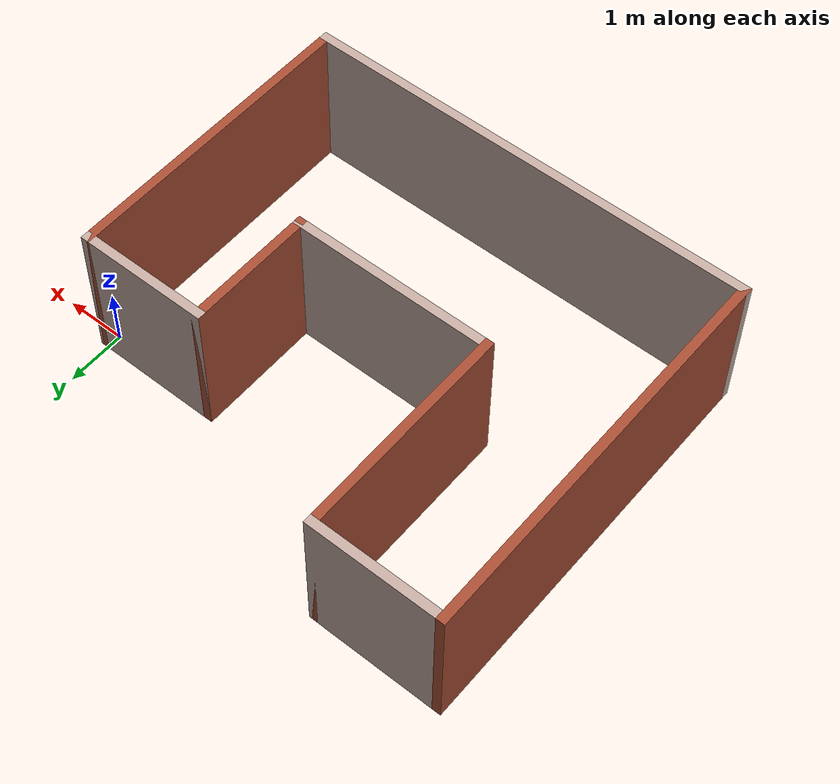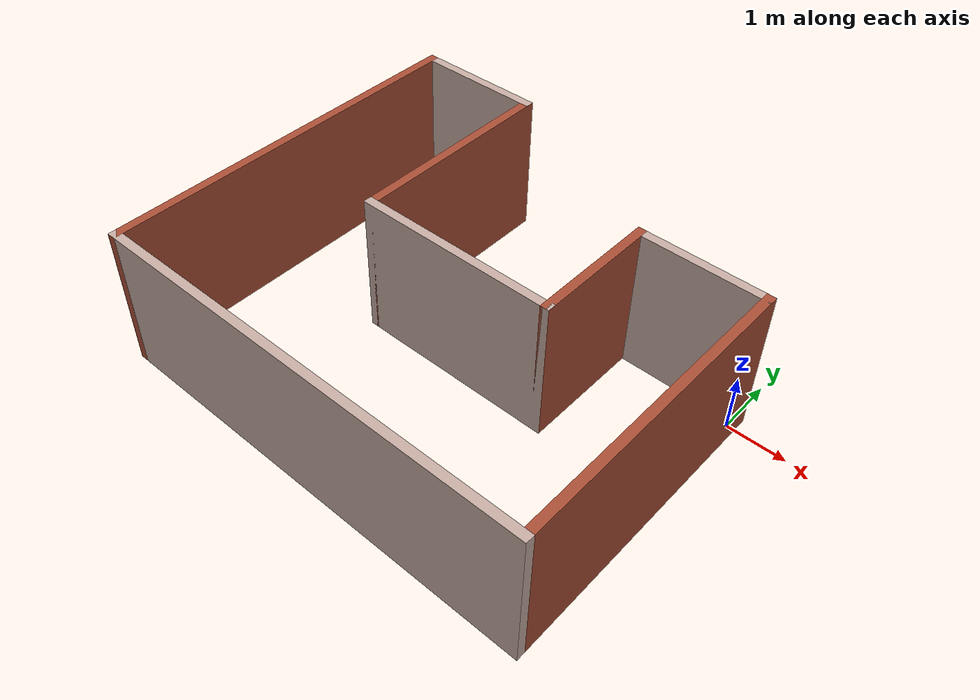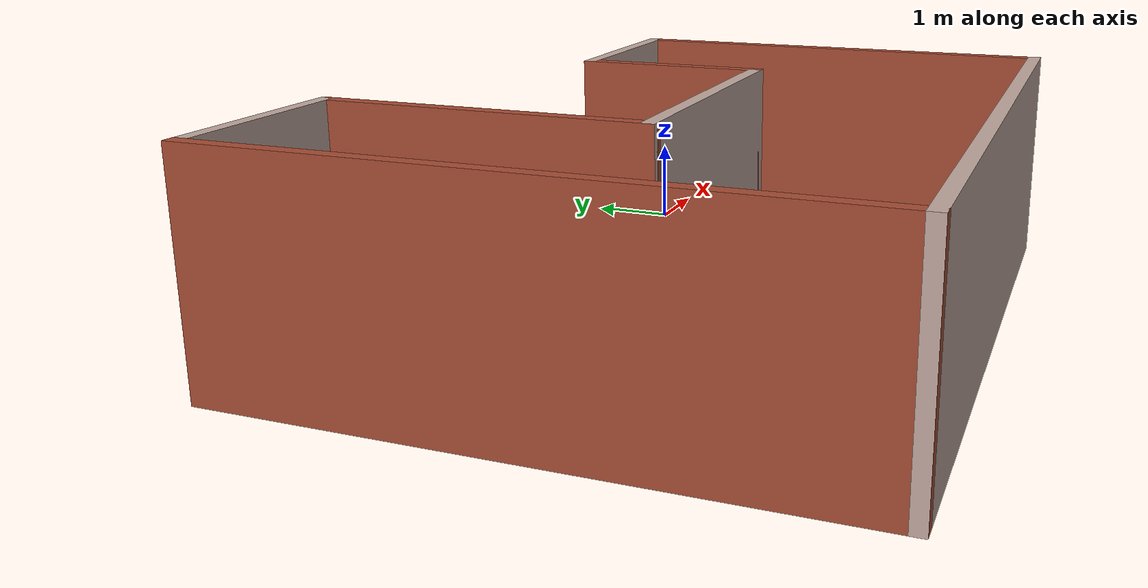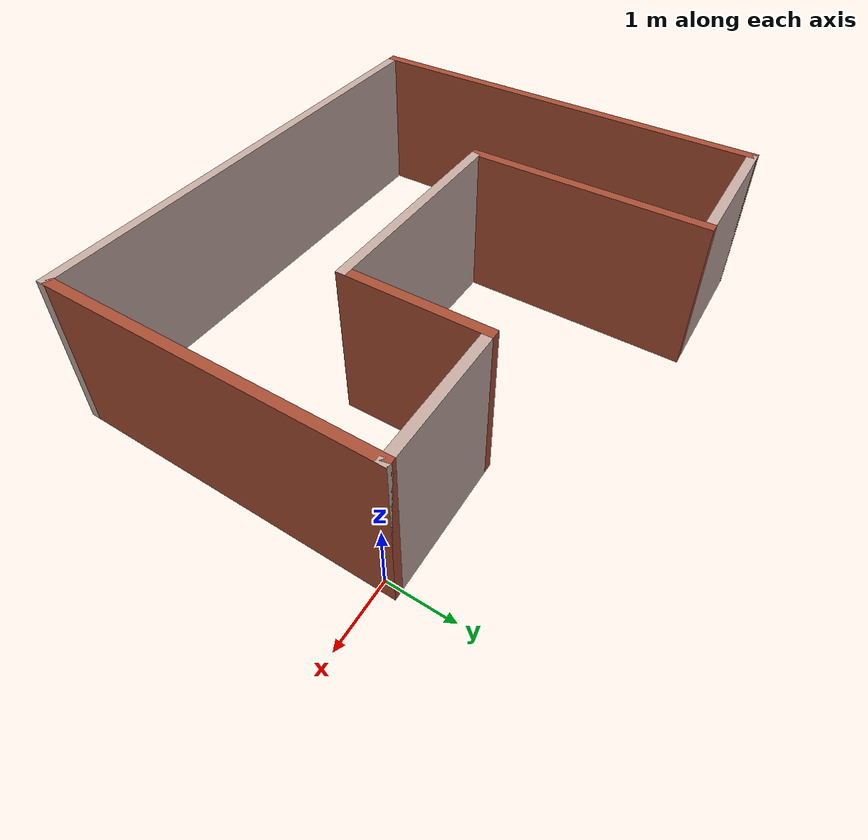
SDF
<?xml version='1.0'?>
<sdf version='1.6'>
  <model name='roomU'>
    <pose frame=''>-3.73747 -1.62964 0 0 -0 0</pose>
    <link name='Wall_0'>
      <collision name='Wall_0_Collision'>
        <geometry>
          <box>
            <size>2.25 0.15 2.5</size>
          </box>
        </geometry>
        <pose frame=''>0 0 1.25 0 -0 0</pose>
      </collision>
      <visual name='Wall_0_Visual'>
        <pose frame=''>0 0 1.25 0 -0 0</pose>
        <geometry>
          <box>
            <size>2.25 0.15 2.5</size>
          </box>
        </geometry>
        <material>
          <script>
            <uri>file://media/materials/scripts/gazebo.material</uri>
            <name>Gazebo/Grey</name>
          </script>
          <ambient>0.760784 0.662745 0.627451 1</ambient>
        </material>
        <meta>
          <layer>0</layer>
        </meta>
      </visual>
      <pose frame=''>-2.7 3.3 0 0 -0 0</pose>
    </link>
    <link name='Wall_1'>
      <collision name='Wall_1_Collision'>
        <geometry>
          <box>
            <size>3.75 0.15 2.5</size>
          </box>
        </geometry>
        <pose frame=''>0 0 1.25 0 -0 0</pose>
      </collision>
      <visual name='Wall_1_Visual'>
        <pose frame=''>0 0 1.25 0 -0 0</pose>
        <geometry>
          <box>
            <size>3.75 0.15 2.5</size>
          </box>
        </geometry>
        <material>
          <script>
            <uri>file://media/materials/scripts/gazebo.material</uri>
            <name>Gazebo/Bricks</name>
          </script>
          <ambient>1 1 1 1</ambient>
        </material>
        <meta>
          <layer>0</layer>
        </meta>
      </visual>
      <pose frame=''>-1.65 1.5 0 0 0 -1.5708</pose>
    </link>
    <link name='Wall_10'>
      <collision name='Wall_10_Collision'>
        <geometry>
          <box>
            <size>6.75 0.15 2.5</size>
          </box>
        </geometry>
        <pose frame=''>0 0 1.25 0 -0 0</pose>
      </collision>
      <visual name='Wall_10_Visual'>
        <pose frame=''>0 0 1.25 0 -0 0</pose>
        <geometry>
          <box>
            <size>6.75 0.15 2.5</size>
          </box>
        </geometry>
        <material>
          <script>
            <uri>file://media/materials/scripts/gazebo.material</uri>
            <name>Gazebo/Bricks</name>
          </script>
          <ambient>1 1 1 1</ambient>
        </material>
        <meta>
          <layer>0</layer>
        </meta>
      </visual>
      <pose frame=''>-3.8 0 0 0 -0 1.5708</pose>
    </link>
    <link name='Wall_2'>
      <collision name='Wall_2_Collision'>
        <geometry>
          <box>
            <size>3.5 0.15 2.5</size>
          </box>
        </geometry>
        <pose frame=''>0 0 1.25 0 -0 0</pose>
      </collision>
      <visual name='Wall_2_Visual'>
        <pose frame=''>0 0 1.25 0 -0 0</pose>
        <geometry>
          <box>
            <size>3.5 0.15 2.5</size>
          </box>
        </geometry>
        <material>
          <script>
            <uri>file://media/materials/scripts/gazebo.material</uri>
            <name>Gazebo/Grey</name>
          </script>
          <ambient>0.760784 0.662745 0.627451 1</ambient>
        </material>
        <meta>
          <layer>0</layer>
        </meta>
      </visual>
      <pose frame=''>0.025 -0.3 0 0 -0 0</pose>
    </link>
    <link name='Wall_3'>
      <collision name='Wall_3_Collision'>
        <geometry>
          <box>
            <size>2.25 0.15 2.5</size>
          </box>
        </geometry>
        <pose frame=''>0 0 1.25 0 -0 0</pose>
      </collision>
      <visual name='Wall_3_Visual'>
        <pose frame=''>0 0 1.25 0 -0 0</pose>
        <geometry>
          <box>
            <size>2.25 0.15 2.5</size>
          </box>
        </geometry>
        <material>
          <script>
            <uri>file://media/materials/scripts/gazebo.material</uri>
            <name>Gazebo/Bricks</name>
          </script>
          <ambient>1 1 1 1</ambient>
        </material>
        <meta>
          <layer>0</layer>
        </meta>
      </visual>
      <pose frame=''>1.7 0.75 0 0 -0 1.5708</pose>
    </link>
    <link name='Wall_4'>
      <collision name='Wall_4_Collision'>
        <geometry>
          <box>
            <size>2.25 0.15 2.5</size>
          </box>
        </geometry>
        <pose frame=''>0 0 1.25 0 -0 0</pose>
      </collision>
      <visual name='Wall_4_Visual'>
        <pose frame=''>0 0 1.25 0 -0 0</pose>
        <geometry>
          <box>
            <size>2.25 0.15 2.5</size>
          </box>
        </geometry>
        <material>
          <script>
            <uri>file://media/materials/scripts/gazebo.material</uri>
            <name>Gazebo/Grey</name>
          </script>
          <ambient>0.760784 0.662745 0.627451 1</ambient>
        </material>
        <meta>
          <layer>0</layer>
        </meta>
      </visual>
      <pose frame=''>2.75 1.8 0 0 -0 0</pose>
    </link>
    <link name='Wall_8'>
      <collision name='Wall_8_Collision'>
        <geometry>
          <box>
            <size>5.25 0.15 2.5</size>
          </box>
        </geometry>
        <pose frame=''>0 0 1.25 0 -0 0</pose>
      </collision>
      <visual name='Wall_8_Visual'>
        <pose frame=''>0 0 1.25 0 -0 0</pose>
        <geometry>
          <box>
            <size>5.25 0.15 2.5</size>
          </box>
        </geometry>
        <material>
          <script>
            <uri>file://media/materials/scripts/gazebo.material</uri>
            <name>Gazebo/Bricks</name>
          </script>
          <ambient>1 1 1 1</ambient>
        </material>
        <meta>
          <layer>0</layer>
        </meta>
      </visual>
      <pose frame=''>3.8 -0.75 0 0 0 -1.5708</pose>
    </link>
    <link name='Wall_9'>
      <collision name='Wall_9_Collision'>
        <geometry>
          <box>
            <size>7.75 0.15 2.5</size>
          </box>
        </geometry>
        <pose frame=''>0 0 1.25 0 -0 0</pose>
      </collision>
      <visual name='Wall_9_Visual'>
        <pose frame=''>0 0 1.25 0 -0 0</pose>
        <geometry>
          <box>
            <size>7.75 0.15 2.5</size>
          </box>
        </geometry>
        <material>
          <script>
            <uri>file://media/materials/scripts/gazebo.material</uri>
            <name>Gazebo/Grey</name>
          </script>
          <ambient>0.760784 0.662745 0.627451 1</ambient>
        </material>
        <meta>
          <layer>0</layer>
        </meta>
      </visual>
      <pose frame=''>0 -3.3 0 0 -0 3.14159</pose>
    </link>
    <static>1</static>
  </model>
</sdf>
